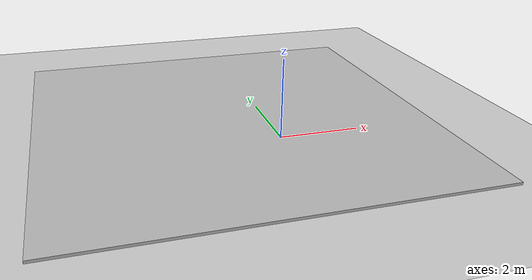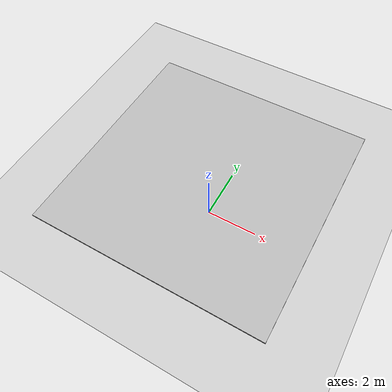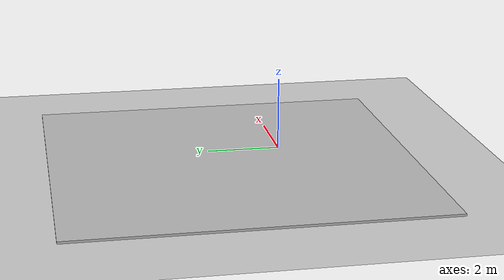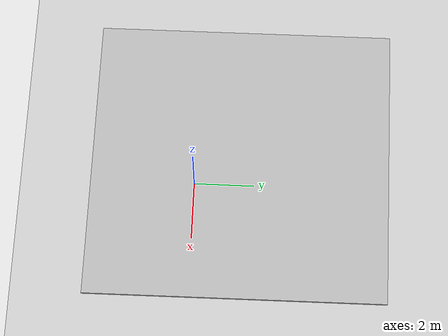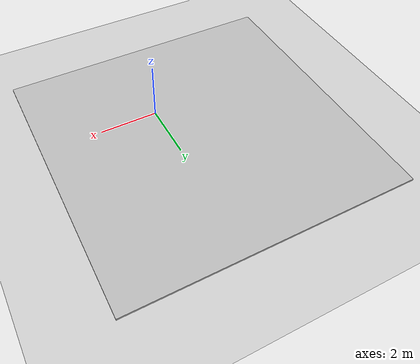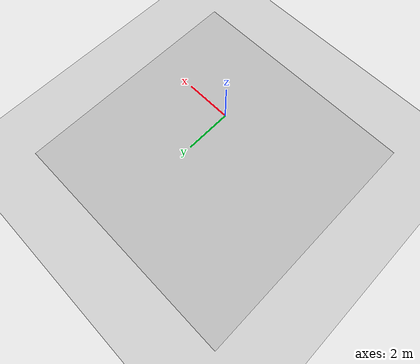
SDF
<sdf version="1.6">
 <world name="default">
  <light name="sun" type="directional">
   <pose>0 0 10 0 -0 0</pose>
   <diffuse>0.8 0.8 0.8 1</diffuse>
   <specular>0.2 0.2 0.2 1</specular>
   <attenuation>
    <range>1000</range>
    <constant>0.9</constant>
    <linear>0.01</linear>
    <quadratic>0.001</quadratic>
   </attenuation>
   <direction>-0.5 0.1 -0.9</direction>
  </light>
  <model name="ground_plane">
   <static>1</static>
   <link name="link">
    <collision name="collision">
     <geometry><plane><normal>0 0 1</normal><size>100 100</size></plane></geometry>
     <surface>
      <contact><collide_bitmask>65535</collide_bitmask></contact>
      <friction><ode><mu>100</mu><mu2>50</mu2></ode></friction>
     </surface>
    </collision>
    <visual name="visual">
     <cast_shadows>0</cast_shadows>
     <geometry><plane><normal>0 0 1</normal><size>100 100</size></plane></geometry>
     <material>
      <script><uri>file://media/materials/scripts/gazebo.material</uri><name>Gazebo/Grey</name></script>
     </material>
    </visual>
   </link>
  </model>
  <gravity>0 0 -9.8</gravity>
  <magnetic_field>6e-06 2.3e-05 -4.2e-05</magnetic_field>
  <atmosphere type="adiabatic"/>
  <physics name="default_physics" default="0" type="ode">
   <max_step_size>0.001</max_step_size>
   <real_time_factor>1</real_time_factor>
   <real_time_update_rate>1000</real_time_update_rate>
  </physics>
  <scene><ambient>0.4 0.4 0.4 1</ambient><background>0.7 0.7 0.7 1</background><shadows>1</shadows></scene>
  <audio><device>default</device></audio>
  <spherical_coordinates>
   <surface_model>EARTH_WGS84</surface_model>
   <latitude_deg>0</latitude_deg>
   <longitude_deg>0</longitude_deg>
   <elevation>0</elevation>
   <heading_deg>0</heading_deg>
  </spherical_coordinates>
  <model name="trace">
   <link name="link">
    <pose>0 0 0.115 0 -0 0</pose>
    <inertial>
     <mass>0.39</mass>
     <inertia><ixx>1</ixx><ixy>0</ixy><ixz>0</ixz><iyy>1</iyy><iyz>0</iyz><izz>1</izz></inertia>
    </inertial>
    <collision name="collision"><geometry><box><size>10 10 0.1</size></box></geometry></collision>
    <visual name="visual">
     <geometry><box><size>10 10 0.1</size></box></geometry>
     <material>
      <script>
       <uri>model://trace/materials/scripts</uri>
       <uri>model://trace/materials/textures</uri>
       <name>trace/Diffuse</name>
      </script>
     </material>
    </visual>
   </link>
   <pose>-0.887735 1.5084 -0.1145 0 -0 0</pose>
  </model>
 </world>
</sdf>
